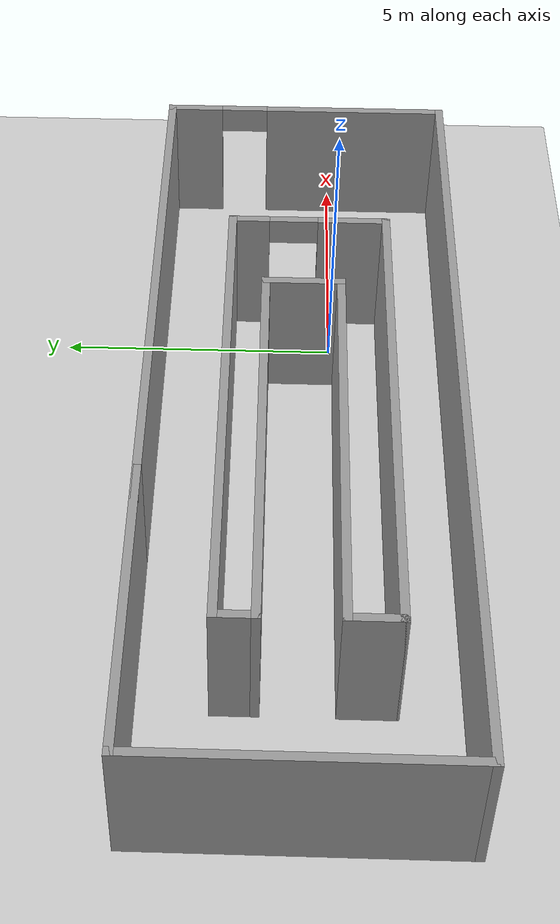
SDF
<sdf version="1.6">
 <world name="default">
  <light name="sun" type="directional">
   <pose>0 0 10 0 -0 0</pose>
   <diffuse>0.8 0.8 0.8 1</diffuse>
   <specular>0.1 0.1 0.1 1</specular>
   <attenuation>
    <range>1000</range>
    <constant>0.9</constant>
    <linear>0.01</linear>
    <quadratic>0.001</quadratic>
   </attenuation>
   <direction>-0.5 0.5 -1</direction>
  </light>
  <model name="ground_plane">
   <static>1</static>
   <link name="link">
    <collision name="collision">
     <geometry><plane><normal>0 0 1</normal><size>100 100</size></plane></geometry>
     <surface><friction><ode><mu>100</mu><mu2>50</mu2></ode></friction></surface>
    </collision>
    <visual name="visual">
     <cast_shadows>0</cast_shadows>
     <geometry><plane><normal>0 0 1</normal><size>100 100</size></plane></geometry>
     <material>
      <script><uri>file://media/materials/scripts/gazebo.material</uri><name>Gazebo/Grey</name></script>
     </material>
    </visual>
   </link>
  </model>
  <gravity>0 0 -9.8</gravity>
  <magnetic_field>6e-06 2.3e-05 -4.2e-05</magnetic_field>
  <atmosphere type="adiabatic"/>
  <physics name="default_physics" default="0" type="ode">
   <max_step_size>0.001</max_step_size>
   <real_time_factor>1</real_time_factor>
   <real_time_update_rate>1000</real_time_update_rate>
  </physics>
  <scene><ambient>0.4 0.4 0.4 1</ambient><background>0.7 0.7 0.7 1</background><shadows>1</shadows></scene>
  <spherical_coordinates>
   <surface_model>EARTH_WGS84</surface_model>
   <latitude_deg>0</latitude_deg>
   <longitude_deg>0</longitude_deg>
   <elevation>0</elevation>
   <heading_deg>0</heading_deg>
  </spherical_coordinates>
  <model name="test_room">
   <pose>-3.1661 0.526339 0 0 -0 0</pose>
   <link name="Wall_10">
    <collision name="Wall_10_Collision">
     <geometry><box><size>9.5 0.15 2.5</size></box></geometry>
     <pose>0 0 1.25 0 -0 0</pose>
    </collision>
    <visual name="Wall_10_Visual">
     <pose>0 0 1.25 0 -0 0</pose>
     <geometry><box><size>9.5 0.15 2.5</size></box></geometry>
     <material>
      <script><uri>file://media/materials/scripts/gazebo.material</uri><name>Gazebo/Grey</name></script>
      <ambient>1 1 1 1</ambient>
     </material>
    </visual>
    <pose>-0.558688 -1.50425 0 0 -0 3.14159</pose>
   </link>
   <link name="Wall_11">
    <collision name="Wall_11_Collision">
     <geometry><box><size>1 0.15 2.5</size></box></geometry>
     <pose>0 0 1.25 0 -0 0</pose>
    </collision>
    <visual name="Wall_11_Visual">
     <pose>0 0 1.25 0 -0 0</pose>
     <geometry><box><size>1 0.15 2.5</size></box></geometry>
     <material>
      <script><uri>file://media/materials/scripts/gazebo.material</uri><name>Gazebo/Grey</name></script>
      <ambient>1 1 1 1</ambient>
     </material>
    </visual>
    <pose>-5.23369 -1.07925 0 0 -0 1.5708</pose>
   </link>
   <link name="Wall_12">
    <collision name="Wall_12_Collision">
     <geometry><box><size>7.75 0.15 2.5</size></box></geometry>
     <pose>0 0 1.25 0 -0 0</pose>
    </collision>
    <visual name="Wall_12_Visual">
     <pose>0 0 1.25 0 -0 0</pose>
     <geometry><box><size>7.75 0.15 2.5</size></box></geometry>
     <material>
      <script><uri>file://media/materials/scripts/gazebo.material</uri><name>Gazebo/Grey</name></script>
      <ambient>1 1 1 1</ambient>
     </material>
    </visual>
    <pose>-1.43369 -0.654245 0 0 -0 0</pose>
   </link>
   <link name="Wall_13">
    <collision name="Wall_13_Collision">
     <geometry><box><size>1.5 0.15 2.5</size></box></geometry>
     <pose>0 0 1.25 0 -0 0</pose>
    </collision>
    <visual name="Wall_13_Visual">
     <pose>0 0 1.25 0 -0 0</pose>
     <geometry><box><size>1.5 0.15 2.5</size></box></geometry>
     <material>
      <script><uri>file://media/materials/scripts/gazebo.material</uri><name>Gazebo/Grey</name></script>
      <ambient>1 1 1 1</ambient>
     </material>
    </visual>
    <pose>2.36631 0.020755 0 0 -0 1.5708</pose>
   </link>
   <link name="Wall_14">
    <collision name="Wall_14_Collision">
     <geometry><box><size>7.75 0.15 2.5</size></box></geometry>
     <pose>0 0 1.25 0 -0 0</pose>
    </collision>
    <visual name="Wall_14_Visual">
     <pose>0 0 1.25 0 -0 0</pose>
     <geometry><box><size>7.75 0.15 2.5</size></box></geometry>
     <material>
      <script><uri>file://media/materials/scripts/gazebo.material</uri><name>Gazebo/Grey</name></script>
      <ambient>1 1 1 1</ambient>
     </material>
    </visual>
    <pose>-1.43369 0.695755 0 0 -0 3.14159</pose>
   </link>
   <link name="Wall_15">
    <collision name="Wall_15_Collision">
     <geometry><box><size>0.8 0.15 2.5</size></box></geometry>
     <pose>0 0 1.25 0 -0 0</pose>
    </collision>
    <visual name="Wall_15_Visual">
     <pose>0 0 1.25 0 -0 0</pose>
     <geometry><box><size>0.8 0.15 2.5</size></box></geometry>
     <material>
      <script><uri>file://media/materials/scripts/gazebo.material</uri><name>Gazebo/Grey</name></script>
      <ambient>1 1 1 1</ambient>
     </material>
    </visual>
    <pose>-5.23369 1.02076 0 0 -0 1.5708</pose>
   </link>
   <link name="Wall_2">
    <collision name="Wall_2_Collision">
     <geometry><box><size>10.75 0.15 2.5</size></box></geometry>
     <pose>0 0 1.25 0 -0 0</pose>
    </collision>
    <visual name="Wall_2_Visual">
     <pose>0 0 1.25 0 -0 0</pose>
     <geometry><box><size>10.75 0.15 2.5</size></box></geometry>
     <material>
      <script><uri>file://media/materials/scripts/gazebo.material</uri><name>Gazebo/Grey</name></script>
      <ambient>1 1 1 1</ambient>
     </material>
    </visual>
    <pose>2.375 2.675 0 0 -0 0</pose>
   </link>
   <link name="Wall_3">
    <pose>7.675 0 0 0 0 -1.5708</pose>
    <visual name="Wall_3_Visual_0">
     <pose>-2.21166 0 1.25 0 -0 0</pose>
     <geometry><box><size>1.07668 0.15 2.5</size></box></geometry>
     <material>
      <script><uri>file://media/materials/scripts/gazebo.material</uri><name>Gazebo/Grey</name></script>
      <ambient>1 1 1 1</ambient>
     </material>
    </visual>
    <collision name="Wall_3_Collision_0">
     <geometry><box><size>1.07668 0.15 2.5</size></box></geometry>
     <pose>-2.21166 0 1.25 0 -0 0</pose>
    </collision>
    <visual name="Wall_3_Visual_1">
     <pose>0.988338 0 1.25 0 -0 0</pose>
     <geometry><box><size>3.52332 0.15 2.5</size></box></geometry>
     <material>
      <script><uri>file://media/materials/scripts/gazebo.material</uri><name>Gazebo/Grey</name></script>
      <ambient>1 1 1 1</ambient>
     </material>
    </visual>
    <collision name="Wall_3_Collision_1">
     <geometry><box><size>3.52332 0.15 2.5</size></box></geometry>
     <pose>0.988338 0 1.25 0 -0 0</pose>
    </collision>
    <visual name="Wall_3_Visual_2">
     <pose>-1.22332 0 2.25 0 -0 0</pose>
     <geometry><box><size>0.9 0.15 0.5</size></box></geometry>
     <material>
      <script><uri>file://media/materials/scripts/gazebo.material</uri><name>Gazebo/Grey</name></script>
      <ambient>1 1 1 1</ambient>
     </material>
    </visual>
    <collision name="Wall_3_Collision_2">
     <geometry><box><size>0.9 0.15 0.5</size></box></geometry>
     <pose>-1.22332 0 2.25 0 -0 0</pose>
    </collision>
   </link>
   <link name="Wall_4">
    <collision name="Wall_4_Collision">
     <geometry><box><size>15.5 0.15 2.5</size></box></geometry>
     <pose>0 0 1.25 0 -0 0</pose>
    </collision>
    <visual name="Wall_4_Visual">
     <pose>0 0 1.25 0 -0 0</pose>
     <geometry><box><size>15.5 0.15 2.5</size></box></geometry>
     <material>
      <script><uri>file://media/materials/scripts/gazebo.material</uri><name>Gazebo/Grey</name></script>
      <ambient>1 1 1 1</ambient>
     </material>
    </visual>
    <pose>0 -2.675 0 0 -0 3.14159</pose>
   </link>
   <link name="Wall_5">
    <collision name="Wall_5_Collision">
     <geometry><box><size>5.5 0.15 2.5</size></box></geometry>
     <pose>0 0 1.25 0 -0 0</pose>
    </collision>
    <visual name="Wall_5_Visual">
     <pose>0 0 1.25 0 -0 0</pose>
     <geometry><box><size>5.5 0.15 2.5</size></box></geometry>
     <material>
      <script><uri>file://media/materials/scripts/gazebo.material</uri><name>Gazebo/Grey</name></script>
      <ambient>1 1 1 1</ambient>
     </material>
    </visual>
    <pose>-7.675 0 0 0 -0 1.5708</pose>
   </link>
   <link name="Wall_6">
    <collision name="Wall_6_Collision">
     <geometry><box><size>5.5 0.15 2.5</size></box></geometry>
     <pose>0 0 1.25 0 -0 0</pose>
    </collision>
    <visual name="Wall_6_Visual">
     <pose>0 0 1.25 0 -0 0</pose>
     <geometry><box><size>5.5 0.15 2.5</size></box></geometry>
     <material>
      <script><uri>file://media/materials/scripts/gazebo.material</uri><name>Gazebo/Grey</name></script>
      <ambient>1 1 1 1</ambient>
     </material>
    </visual>
    <pose>-5 2.675 0 0 -0 0</pose>
   </link>
   <link name="Wall_8">
    <collision name="Wall_8_Collision">
     <geometry><box><size>9.5 0.15 2.5</size></box></geometry>
     <pose>0 0 1.25 0 -0 0</pose>
    </collision>
    <visual name="Wall_8_Visual">
     <pose>0 0 1.25 0 -0 0</pose>
     <geometry><box><size>9.5 0.15 2.5</size></box></geometry>
     <material>
      <script><uri>file://media/materials/scripts/gazebo.material</uri><name>Gazebo/Grey</name></script>
      <ambient>1 1 1 1</ambient>
     </material>
    </visual>
    <pose>-0.558688 1.34576 0 0 -0 0</pose>
   </link>
   <link name="Wall_9">
    <pose>4.11631 -0.079245 0 0 0 -1.5708</pose>
    <visual name="Wall_9_Visual_0">
     <pose>-1.11907 0 1.25 0 -0 0</pose>
     <geometry><box><size>0.761854 0.15 2.5</size></box></geometry>
     <material>
      <script><uri>file://media/materials/scripts/gazebo.material</uri><name>Gazebo/Grey</name></script>
      <ambient>1 1 1 1</ambient>
     </material>
    </visual>
    <collision name="Wall_9_Collision_0">
     <geometry><box><size>0.761854 0.15 2.5</size></box></geometry>
     <pose>-1.11907 0 1.25 0 -0 0</pose>
    </collision>
    <visual name="Wall_9_Visual_1">
     <pose>0.830927 0 1.25 0 -0 0</pose>
     <geometry><box><size>1.33815 0.15 2.5</size></box></geometry>
     <material>
      <script><uri>file://media/materials/scripts/gazebo.material</uri><name>Gazebo/Grey</name></script>
      <ambient>1 1 1 1</ambient>
     </material>
    </visual>
    <collision name="Wall_9_Collision_1">
     <geometry><box><size>1.33815 0.15 2.5</size></box></geometry>
     <pose>0.830927 0 1.25 0 -0 0</pose>
    </collision>
    <visual name="Wall_9_Visual_2">
     <pose>-0.288146 0 2.25 0 -0 0</pose>
     <geometry><box><size>0.9 0.15 0.5</size></box></geometry>
     <material>
      <script><uri>file://media/materials/scripts/gazebo.material</uri><name>Gazebo/Grey</name></script>
      <ambient>1 1 1 1</ambient>
     </material>
    </visual>
    <collision name="Wall_9_Collision_2">
     <geometry><box><size>0.9 0.15 0.5</size></box></geometry>
     <pose>-0.288146 0 2.25 0 -0 0</pose>
    </collision>
   </link>
   <static>1</static>
  </model>
 </world>
</sdf>
